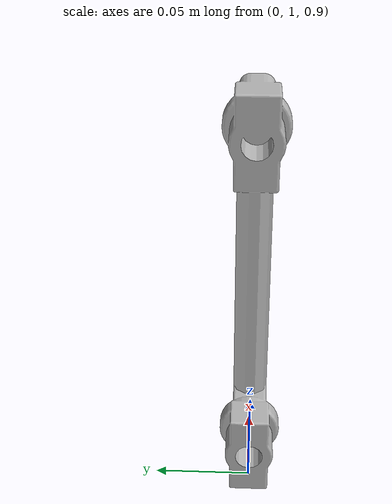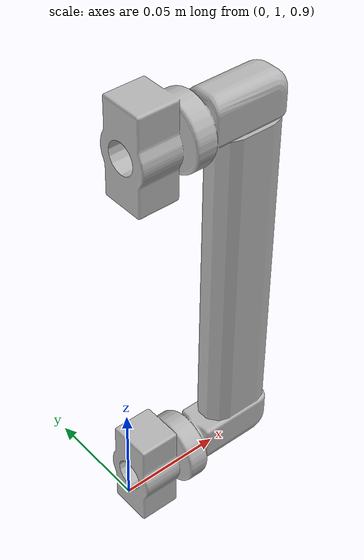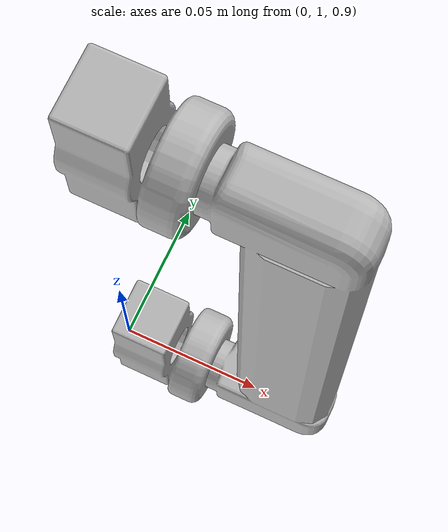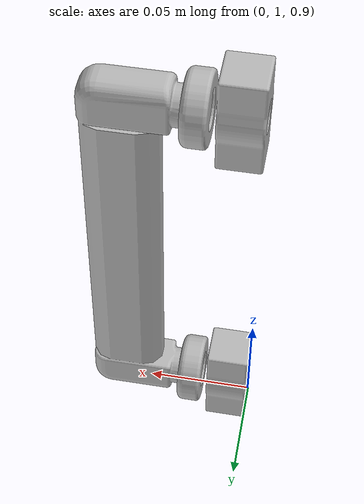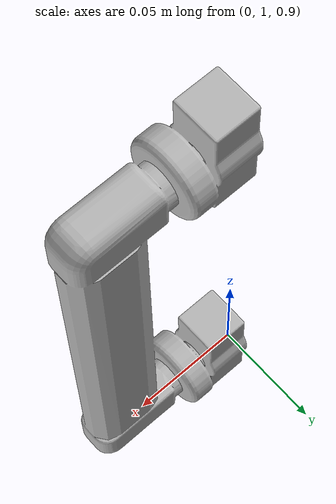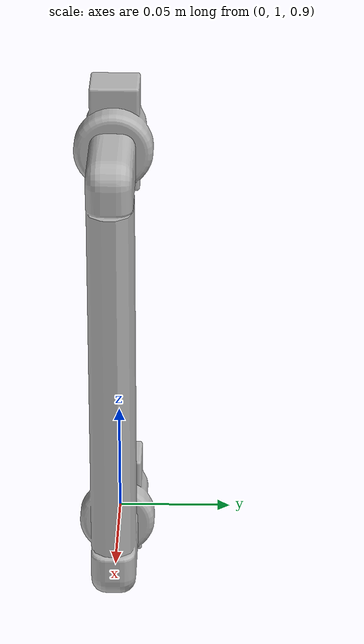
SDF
<?xml version="1.0" ?>

<sdf version="1.6">
  <world name="empty">
    <physics name="1ms" type="ignored">
      <max_step_size>0.001</max_step_size>
      <real_time_factor>1.0</real_time_factor>
    </physics>
    <plugin filename="gz-sim-physics-system" name="gz::sim::systems::Physics">
    </plugin>
    <plugin filename="gz-sim-user-commands-system" name="gz::sim::systems::UserCommands">
    </plugin>
    <plugin filename="gz-sim-scene-broadcaster-system" name="gz::sim::systems::SceneBroadcaster">
    </plugin>
    <plugin filename="gz-sim-contact-system" name="gz::sim::systems::Contact">
    </plugin>

    <plugin filename="gz-sim-sensors-system" name="gz::sim::systems::Sensors">
      <render_engine>ogre2</render_engine>
    </plugin>
    <plugin filename="gz-sim-imu-system" name="gz::sim::systems::Imu">
    </plugin>

    <scene>
      <ambient>1.0 1.0 1.0</ambient>
      <background>0.8 0.8 0.8</background>
      <grid>true</grid>
    </scene>

    <light type="directional" name="sun">
      <cast_shadows>true</cast_shadows>
      <pose>0 0 10 0 0 0</pose>
      <diffuse>0.8 0.8 0.8 1</diffuse>
      <specular>0.2 0.2 0.2 1</specular>
      <attenuation>
        <range>1000</range>
        <constant>0.9</constant>
        <linear>0.01</linear>
        <quadratic>0.001</quadratic>
      </attenuation>
      <direction>-0.5 0.1 -0.9</direction>
    </light>

    <model name="ground_plane">
      <static>true</static>
      <link name="link">
        <collision name="collision">
          <geometry>
            <plane>
              <normal>0 0 1</normal>
              <size>100 100</size>
            </plane>
          </geometry>
          <surface>
            <friction>
              <ode>
                <mu>50</mu>
              </ode>
            </friction>
            <bounce/>
            <contact/>
          </surface>
        </collision>
        <visual name="visual">
          <geometry>
            <plane>
              <normal>0 0 1</normal>
              <size>100 100</size>
            </plane>
          </geometry>
          <material>
            <ambient>0.8 0.8 0.8 1</ambient>
            <diffuse>0.8 0.8 0.8 1</diffuse>
            <specular>0.8 0.8 0.8 1</specular>
          </material>
        </visual>
      </link>
    </model>

    <!-- Spawn Handrail -->

    <model name='handrail'>
      <static>true</static>
      <link name='body'>
        <collision name='body_collision_collision'>
          <pose>0 0 0 0 0 0</pose>
          <geometry>
            <mesh>
              <scale>1 1 1</scale>
              <uri>file:///home/tafarrel/gazebo_models/astrobee_handrail_8_5/meshes/handrail_8_5.dae</uri>
            </mesh>
          </geometry>
        </collision>
        <visual name='visual'>
          <pose>0 0 0 0 0 0</pose>
          <geometry>
            <mesh>
              <scale>1 1 1</scale>
              <uri>file:///home/tafarrel/gazebo_models/astrobee_handrail_8_5/meshes/handrail_8_5.dae</uri>
            </mesh>
          </geometry>
        </visual>
        <pose>0 0 0 0 0 0</pose>
        <enable_wind>false</enable_wind>
      </link>
      <static>true</static>
      <pose>0 1 1 0 0 0</pose>
      <self_collide>false</self_collide>
    </model>

  </world>
</sdf>
